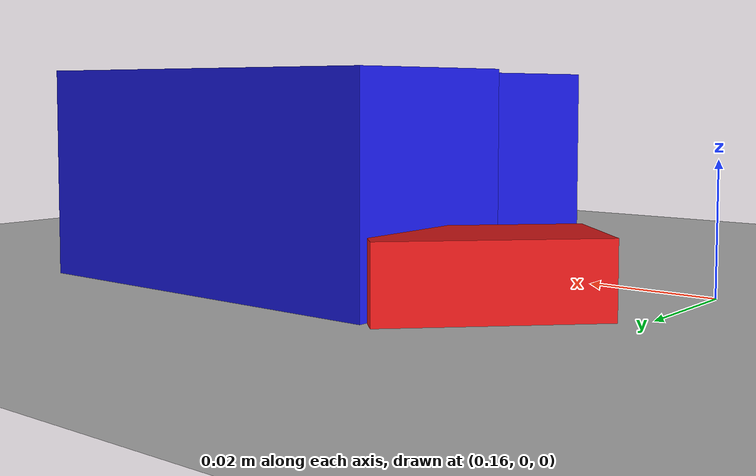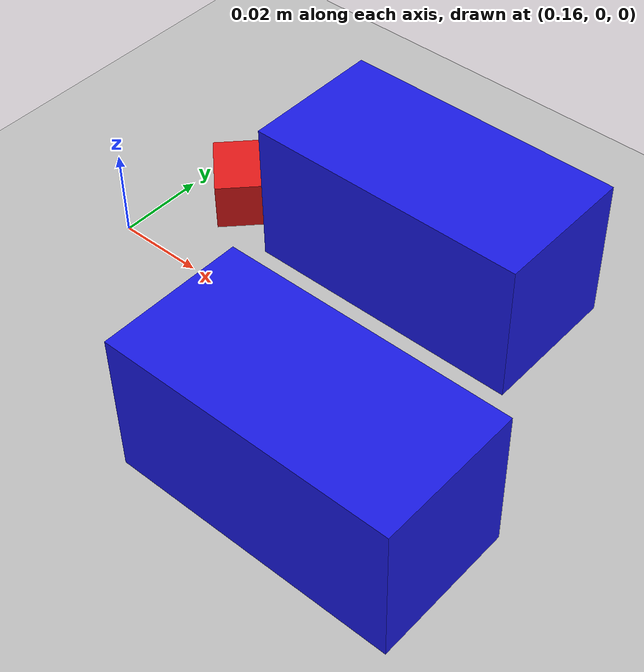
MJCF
<mujoco model="so_arm101_scene">
  <!-- Physics settings: small timestep for stable contact with tiny blocks -->
  <option timestep="0.0005" gravity="0 0 -9.81" integrator="implicit"
          noslip_iterations="3"/>
  <size nconmax="200" njmax="200"/>

  <compiler angle="radian" meshdir="../meshes/"/>

  <asset>
    <texture type="2d" name="grid_tex" builtin="checker"
             rgb1="0.8 0.8 0.8" rgb2="0.7 0.7 0.7"
             width="512" height="512"/>
    <material name="ground_mat" texture="grid_tex"
              texrepeat="10 10" reflectance="0.1"/>
    <material name="red_lego" rgba="0.9 0.1 0.1 1"/>
    <material name="blue_lego" rgba="0.1 0.1 0.9 1"/>
  </asset>

  <!-- Lighting -->
  <visual>
    <headlight ambient="0.3 0.3 0.3" diffuse="0.4 0.4 0.4" specular="0.1 0.1 0.1"/>
  </visual>

  <worldbody>
    <!-- Sun light (directional, matching SDF dir=-0.5 0.1 -0.9) -->
    <light name="sun" pos="0 0 10" dir="-0.5 0.1 -0.9"
           diffuse="0.9 0.9 0.9" specular="0.3 0.3 0.3"
           castshadow="true" directional="true"/>

    <!-- Fill light for better camera visibility -->
    <light name="fill_light" pos="0 0 5" dir="0.5 -0.3 -0.7"
           diffuse="0.4 0.4 0.4" specular="0.1 0.1 0.1"
           castshadow="false" directional="true"/>

    <!-- Ground plane with friction (mu=1.0 matching SDF) -->
    <geom name="ground" type="plane" size="5 5 0.01"
          material="ground_mat" friction="1.0 1.0 0.001"/>

    <!--
      LEGO bricks managed by LegoPickEnv: red target + 2 blue distractors.
      Positions are randomized at reset; XML defaults are just fallbacks.
    -->

    <!-- Red lego 2x4: 32x16x11mm (mass inflated for stable contact) -->
    <body name="red_lego_2x4"
          pos="0.18 0.03 0.0055" quat="0.9211 0 0 0.3894">
      <freejoint name="red_lego_2x4_jnt"/>
      <geom type="box" size="0.016 0.008 0.0055"
            material="red_lego" contype="1" conaffinity="1" mass="0.05"
            friction="1.0 0.5 0.001" solref="0.01 1" solimp="0.9 0.95 0.001"/>
    </body>

    <!-- Blue lego distractor: 64x32x33mm — 3x taller than red for wrist-camera occlusion -->
    <body name="blue_lego_2x2"
          pos="0.22 0.03 0.0165" quat="1 0 0 0">
      <freejoint name="blue_lego_2x2_jnt"/>
      <geom type="box" size="0.032 0.016 0.0165"
            material="blue_lego" contype="1" conaffinity="1" mass="0.05"
            friction="1.0 0.5 0.001" solref="0.01 1" solimp="0.9 0.95 0.001"/>
    </body>

    <!-- Blue lego distractor b: 64x32x33mm — second tall distractor -->
    <body name="blue_lego_2x2_b"
          pos="0.24 -0.03 0.0165" quat="1 0 0 0">
      <freejoint name="blue_lego_2x2_b_jnt"/>
      <geom type="box" size="0.032 0.016 0.0165"
            material="blue_lego" contype="1" conaffinity="1" mass="0.05"
            friction="1.0 0.5 0.001" solref="0.01 1" solimp="0.9 0.95 0.001"/>
    </body>

    <!-- Wrist camera definition (specs: hfov=100deg=1.7453rad, 1280x720) -->
    <!-- Camera is attached to robot at runtime; this defines default viewpoint -->
    <camera name="overhead" pos="0.2 0 0.5" xyaxes="0 1 0 -1 0 0"
            fovy="60" mode="fixed"/>
  </worldbody>
</mujoco>
